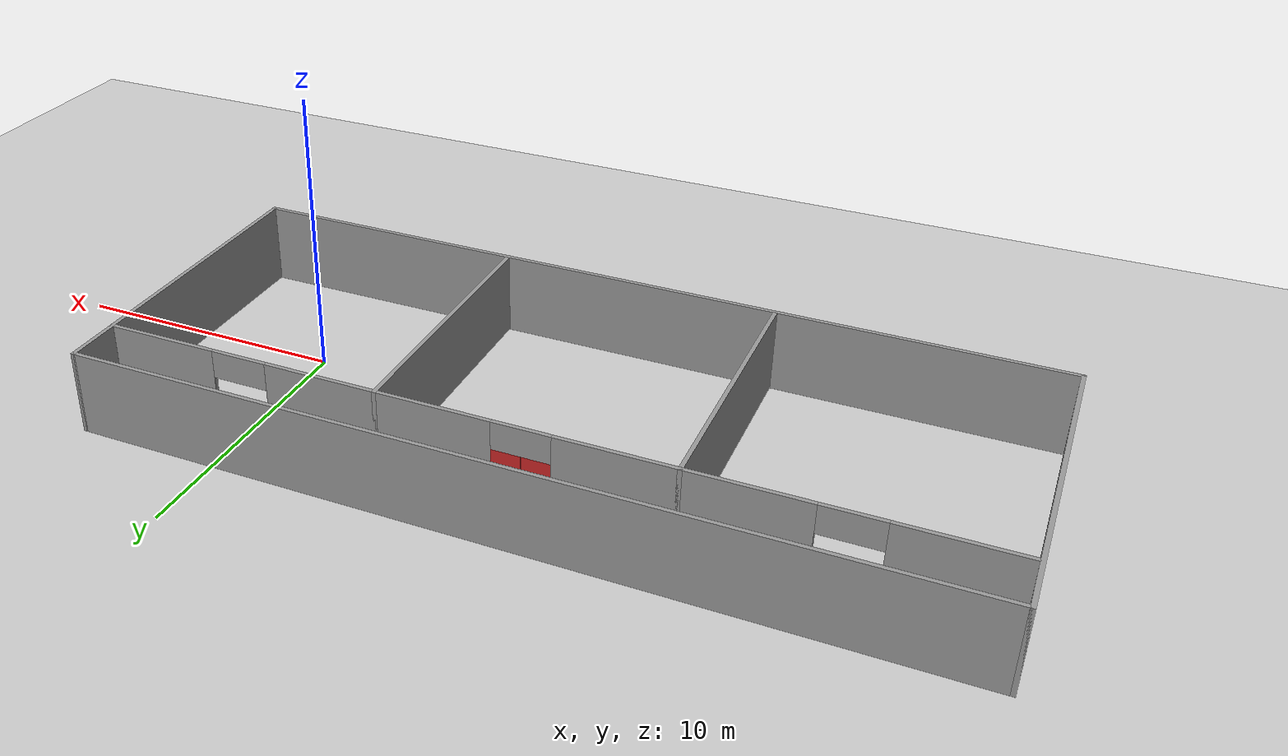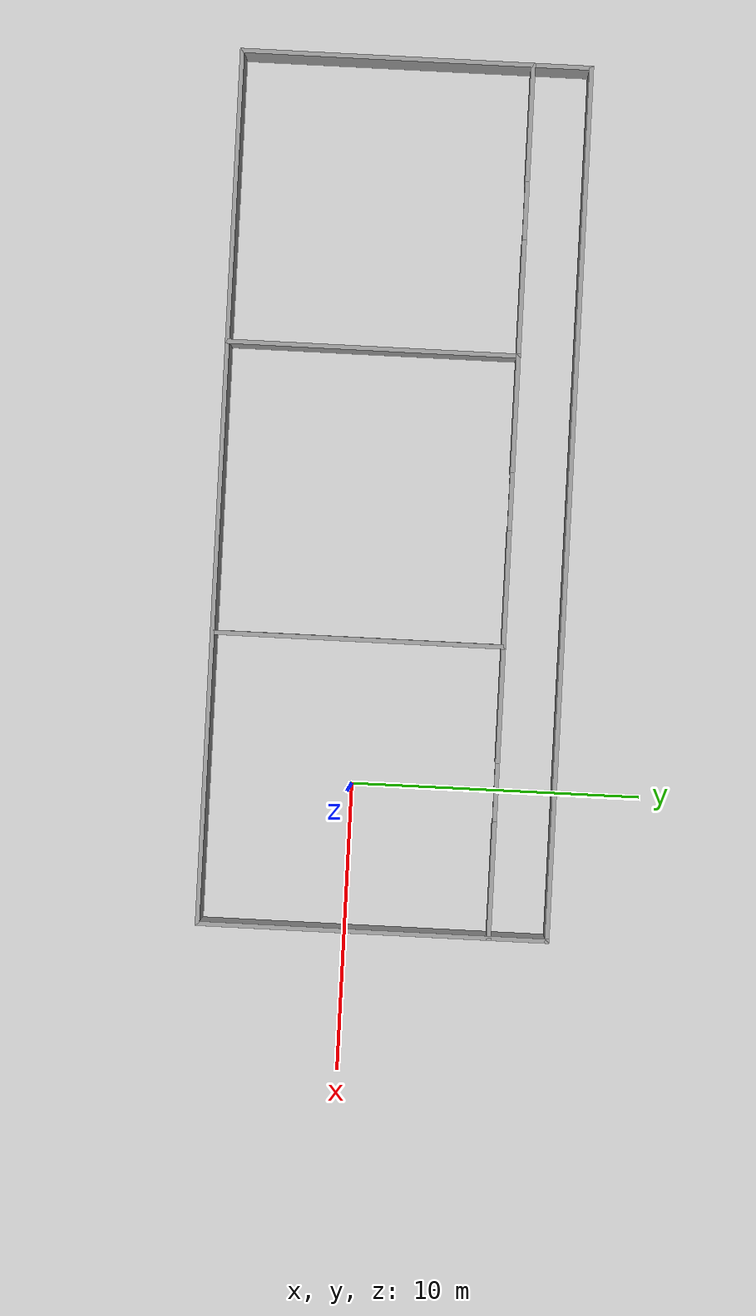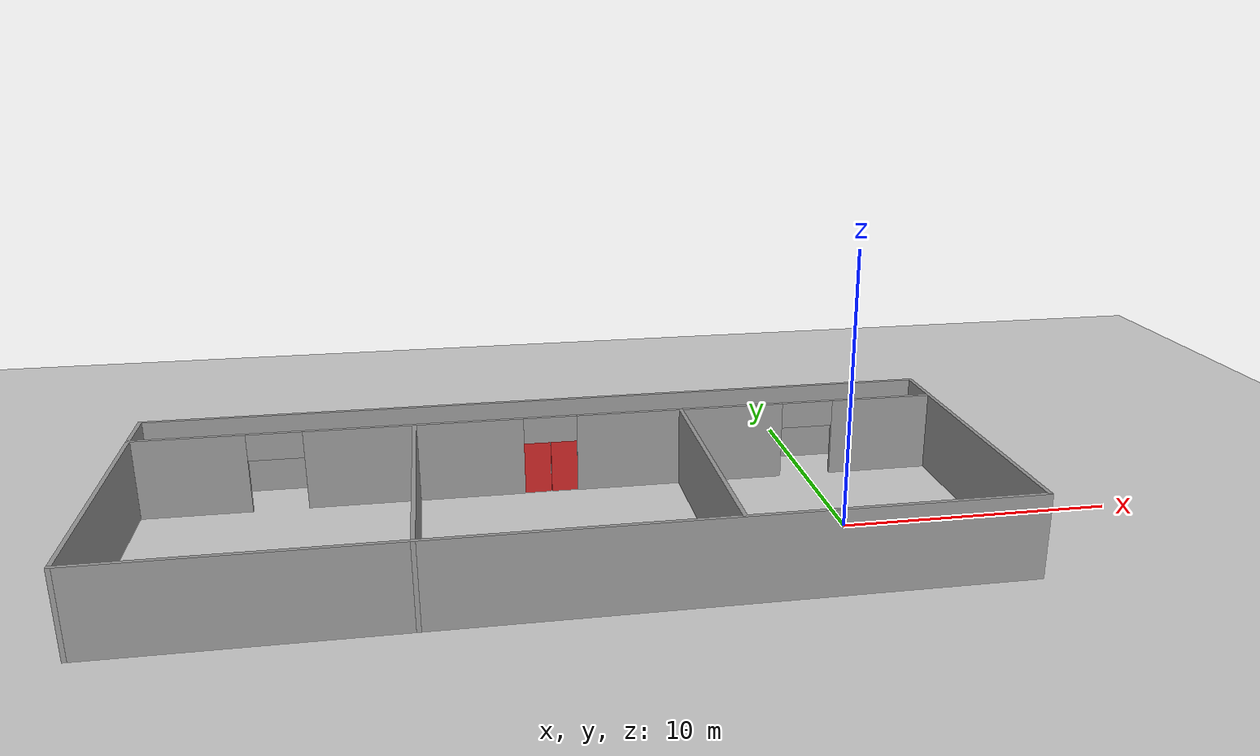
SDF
<sdf version="1.6">
 <world name="default">
  <light name="sun" type="directional">
   <pose>0 0 10 0 -0 0</pose>
   <diffuse>0.8 0.8 0.8 1</diffuse>
   <specular>0.2 0.2 0.2 1</specular>
   <attenuation>
    <range>1000</range>
    <constant>0.9</constant>
    <linear>0.01</linear>
    <quadratic>0.001</quadratic>
   </attenuation>
   <direction>-0.5 0.1 -0.9</direction>
  </light>
  <model name="ground_plane">
   <static>1</static>
   <link name="link">
    <collision name="collision">
     <geometry><plane><normal>0 0 1</normal><size>100 100</size></plane></geometry>
     <surface><friction><ode><mu>100</mu><mu2>50</mu2></ode></friction></surface>
    </collision>
    <visual name="visual">
     <cast_shadows>0</cast_shadows>
     <geometry><plane><normal>0 0 1</normal><size>100 100</size></plane></geometry>
     <material>
      <script><uri>file://media/materials/scripts/gazebo.material</uri><name>Gazebo/Grey</name></script>
     </material>
    </visual>
   </link>
  </model>
  <gravity>0 0 -9.8</gravity>
  <magnetic_field>6e-06 2.3e-05 -4.2e-05</magnetic_field>
  <atmosphere type="adiabatic"/>
  <physics name="default_physics" default="0" type="ode">
   <max_step_size>0.001</max_step_size>
   <real_time_factor>1</real_time_factor>
   <real_time_update_rate>1000</real_time_update_rate>
  </physics>
  <scene><ambient>0.4 0.4 0.4 1</ambient><background>0.7 0.7 0.7 1</background><shadows>1</shadows></scene>
  <spherical_coordinates>
   <surface_model>EARTH_WGS84</surface_model>
   <latitude_deg>0</latitude_deg>
   <longitude_deg>0</longitude_deg>
   <elevation>0</elevation>
   <heading_deg>0</heading_deg>
  </spherical_coordinates>
  <model name="SimilarRooms">
   <pose>-10 1 0 0 -0 0</pose>
   <link name="Wall_1">
    <collision name="Wall_1_Collision">
     <geometry><box><size>30.15 0.15 3</size></box></geometry>
     <pose>0 0 1.5 0 -0 0</pose>
    </collision>
    <visual name="Wall_1_Visual">
     <pose>0 0 1.5 0 -0 0</pose>
     <geometry><box><size>30.15 0.15 3</size></box></geometry>
     <material>
      <script><uri>file://media/materials/scripts/gazebo.material</uri><name>Gazebo/Grey</name></script>
      <ambient>1 1 1 1</ambient>
     </material>
     <meta><layer>0</layer></meta>
    </visual>
    <pose>0 -6 0 0 -0 3.14159</pose>
   </link>
   <link name="Wall_10">
    <collision name="Wall_10_Collision">
     <geometry><box><size>10.15 0.15 3</size></box></geometry>
     <pose>0 0 1.5 0 -0 0</pose>
    </collision>
    <visual name="Wall_10_Visual">
     <pose>0 0 1.5 0 -0 0</pose>
     <geometry><box><size>10.15 0.15 3</size></box></geometry>
     <material>
      <script><uri>file://media/materials/scripts/gazebo.material</uri><name>Gazebo/Grey</name></script>
      <ambient>1 1 1 1</ambient>
     </material>
     <meta><layer>0</layer></meta>
    </visual>
    <pose>5 -1 0 0 0 -1.5708</pose>
   </link>
   <link name="Wall_2">
    <collision name="Wall_2_Collision">
     <geometry><box><size>12.15 0.15 3</size></box></geometry>
     <pose>0 0 1.5 0 -0 0</pose>
    </collision>
    <visual name="Wall_2_Visual">
     <pose>0 0 1.5 0 -0 0</pose>
     <geometry><box><size>12.15 0.15 3</size></box></geometry>
     <material>
      <script><uri>file://media/materials/scripts/gazebo.material</uri><name>Gazebo/Grey</name></script>
      <ambient>1 1 1 1</ambient>
     </material>
     <meta><layer>0</layer></meta>
    </visual>
    <pose>-15 0 0 0 -0 1.5708</pose>
   </link>
   <link name="Wall_3">
    <collision name="Wall_3_Collision">
     <geometry><box><size>30.15 0.15 3</size></box></geometry>
     <pose>0 0 1.5 0 -0 0</pose>
    </collision>
    <visual name="Wall_3_Visual">
     <pose>0 0 1.5 0 -0 0</pose>
     <geometry><box><size>30.15 0.15 3</size></box></geometry>
     <material>
      <script><uri>file://media/materials/scripts/gazebo.material</uri><name>Gazebo/Grey</name></script>
      <ambient>1 1 1 1</ambient>
     </material>
     <meta><layer>0</layer></meta>
    </visual>
    <pose>0 6 0 0 -0 0</pose>
   </link>
   <link name="Wall_4">
    <collision name="Wall_4_Collision">
     <geometry><box><size>12.15 0.15 3</size></box></geometry>
     <pose>0 0 1.5 0 -0 0</pose>
    </collision>
    <visual name="Wall_4_Visual">
     <pose>0 0 1.5 0 -0 0</pose>
     <geometry><box><size>12.15 0.15 3</size></box></geometry>
     <material>
      <script><uri>file://media/materials/scripts/gazebo.material</uri><name>Gazebo/Grey</name></script>
      <ambient>1 1 1 1</ambient>
     </material>
     <meta><layer>0</layer></meta>
    </visual>
    <pose>15 0 0 0 0 -1.5708</pose>
   </link>
   <link name="Wall_6">
    <pose>0 4 0 0 -0 0</pose>
    <visual name="Wall_6_Visual_0">
     <pose>-13.0375 0 1.5 0 -0 0</pose>
     <geometry><box><size>4.075 0.15 3</size></box></geometry>
     <material>
      <script><uri>file://media/materials/scripts/gazebo.material</uri><name>Gazebo/Grey</name></script>
      <ambient>1 1 1 1</ambient>
     </material>
     <meta><layer>0</layer></meta>
    </visual>
    <collision name="Wall_6_Collision_0">
     <geometry><box><size>4.075 0.15 3</size></box></geometry>
     <pose>-13.0375 0 1.5 0 -0 0</pose>
    </collision>
    <visual name="Wall_6_Visual_1">
     <pose>-5 0 1.5 0 -0 0</pose>
     <geometry><box><size>8 0.15 3</size></box></geometry>
     <material>
      <script><uri>file://media/materials/scripts/gazebo.material</uri><name>Gazebo/Grey</name></script>
      <ambient>1 1 1 1</ambient>
     </material>
     <meta><layer>0</layer></meta>
    </visual>
    <collision name="Wall_6_Collision_1">
     <geometry><box><size>8 0.15 3</size></box></geometry>
     <pose>-5 0 1.5 0 -0 0</pose>
    </collision>
    <visual name="Wall_6_Visual_2">
     <pose>5 0 1.5 0 -0 0</pose>
     <geometry><box><size>8 0.15 3</size></box></geometry>
     <material>
      <script><uri>file://media/materials/scripts/gazebo.material</uri><name>Gazebo/Grey</name></script>
      <ambient>1 1 1 1</ambient>
     </material>
     <meta><layer>0</layer></meta>
    </visual>
    <collision name="Wall_6_Collision_2">
     <geometry><box><size>8 0.15 3</size></box></geometry>
     <pose>5 0 1.5 0 -0 0</pose>
    </collision>
    <visual name="Wall_6_Visual_3">
     <pose>13.0375 0 1.5 0 -0 0</pose>
     <geometry><box><size>4.075 0.15 3</size></box></geometry>
     <material>
      <script><uri>file://media/materials/scripts/gazebo.material</uri><name>Gazebo/Grey</name></script>
      <ambient>1 1 1 1</ambient>
     </material>
     <meta><layer>0</layer></meta>
    </visual>
    <collision name="Wall_6_Collision_3">
     <geometry><box><size>4.075 0.15 3</size></box></geometry>
     <pose>13.0375 0 1.5 0 -0 0</pose>
    </collision>
    <visual name="Wall_6_Visual_4">
     <pose>-10 0 2.5 0 -0 0</pose>
     <geometry><box><size>2 0.15 1</size></box></geometry>
     <material>
      <script><uri>file://media/materials/scripts/gazebo.material</uri><name>Gazebo/Grey</name></script>
      <ambient>1 1 1 1</ambient>
     </material>
     <meta><layer>0</layer></meta>
    </visual>
    <collision name="Wall_6_Collision_4">
     <geometry><box><size>2 0.15 1</size></box></geometry>
     <pose>-10 0 2.5 0 -0 0</pose>
    </collision>
    <visual name="Wall_6_Visual_5">
     <pose>0 0 2.5 0 -0 0</pose>
     <geometry><box><size>2 0.15 1</size></box></geometry>
     <material>
      <script><uri>file://media/materials/scripts/gazebo.material</uri><name>Gazebo/Grey</name></script>
      <ambient>1 1 1 1</ambient>
     </material>
     <meta><layer>0</layer></meta>
    </visual>
    <collision name="Wall_6_Collision_5">
     <geometry><box><size>2 0.15 1</size></box></geometry>
     <pose>0 0 2.5 0 -0 0</pose>
    </collision>
    <visual name="Wall_6_Visual_6">
     <pose>10 0 2.5 0 -0 0</pose>
     <geometry><box><size>2 0.15 1</size></box></geometry>
     <material>
      <script><uri>file://media/materials/scripts/gazebo.material</uri><name>Gazebo/Grey</name></script>
      <ambient>1 1 1 1</ambient>
     </material>
     <meta><layer>0</layer></meta>
    </visual>
    <collision name="Wall_6_Collision_6">
     <geometry><box><size>2 0.15 1</size></box></geometry>
     <pose>10 0 2.5 0 -0 0</pose>
    </collision>
   </link>
   <link name="Wall_8">
    <collision name="Wall_8_Collision">
     <geometry><box><size>10.15 0.15 3</size></box></geometry>
     <pose>0 0 1.5 0 -0 0</pose>
    </collision>
    <visual name="Wall_8_Visual">
     <pose>0 0 1.5 0 -0 0</pose>
     <geometry><box><size>10.15 0.15 3</size></box></geometry>
     <material>
      <script><uri>file://media/materials/scripts/gazebo.material</uri><name>Gazebo/Grey</name></script>
      <ambient>1 1 1 1</ambient>
     </material>
     <meta><layer>0</layer></meta>
    </visual>
    <pose>-5 -1 0 0 0 -1.5708</pose>
   </link>
   <static>1</static>
  </model>
  <model name="unit_box_new_red">
   <link name="link">
    <inertial>
     <mass>3.93982e+06</mass>
     <inertia>
      <ixx>5.42451e+06</ixx>
      <ixy>0</ixy>
      <ixz>0</ixz>
      <iyy>5.42451e+06</iyy>
      <iyz>0</iyz>
      <izz>656636</izz>
     </inertia>
    </inertial>
    <visual name="visual">
     <geometry><box><size>1 0.1 2</size></box></geometry>
     <material>
      <script><name>Gazebo/Red</name><uri>file://media/materials/scripts/gazebo.material</uri></script>
      <shader type="pixel"><normal_map>__default__</normal_map></shader>
      <ambient>0.5 0.3 0.3 1</ambient>
      <diffuse>0.9 0.7 0.7 1</diffuse>
      <specular>0.03 0.01 0.01 1</specular>
      <emissive>0 0 0 1</emissive>
     </material>
     <pose>0 0 1 0 -0 0</pose>
    </visual>
    <collision name="collision">
     <pose>0 0 1 0 -0 0</pose>
     <geometry><box><size>1 0.1 2</size></box></geometry>
     <surface>
      <friction>
       <ode><mu>1</mu><mu2>1</mu2><fdir1>0 0 0</fdir1><slip1>0</slip1><slip2>0</slip2></ode>
       <torsional>
        <coefficient>1</coefficient>
        <patch_radius>0</patch_radius>
        <surface_radius>0</surface_radius>
        <use_patch_radius>1</use_patch_radius>
        <ode><slip>0</slip></ode>
       </torsional>
      </friction>
      <bounce><restitution_coefficient>0</restitution_coefficient><threshold>1e+06</threshold></bounce>
      <contact>
       <collide_without_contact>0</collide_without_contact>
       <collide_without_contact_bitmask>1</collide_without_contact_bitmask>
       <collide_bitmask>1</collide_bitmask>
       <ode>
        <soft_cfm>0</soft_cfm>
        <soft_erp>0.2</soft_erp>
        <kp>1e+13</kp>
        <kd>1</kd>
        <max_vel>0.01</max_vel>
        <min_depth>0</min_depth>
       </ode>
       <bullet>
        <split_impulse>1</split_impulse>
        <split_impulse_penetration_threshold>-0.01</split_impulse_penetration_threshold>
        <soft_cfm>0</soft_cfm>
        <soft_erp>0.2</soft_erp>
        <kp>1e+13</kp>
        <kd>1</kd>
       </bullet>
      </contact>
     </surface>
    </collision>
   </link>
   <static>1</static>
   <pose>-10.51 5 0 0 -0 0</pose>
  </model>
  <model name="unit_box_new_red_clone">
   <link name="link">
    <inertial>
     <mass>3.93982e+06</mass>
     <inertia>
      <ixx>5.42451e+06</ixx>
      <ixy>0</ixy>
      <ixz>0</ixz>
      <iyy>5.42451e+06</iyy>
      <iyz>0</iyz>
      <izz>656636</izz>
     </inertia>
    </inertial>
    <visual name="visual">
     <geometry><box><size>1 0.1 2</size></box></geometry>
     <material>
      <script><name>Gazebo/Red</name><uri>file://media/materials/scripts/gazebo.material</uri></script>
      <shader type="pixel"><normal_map>__default__</normal_map></shader>
      <ambient>0.5 0.3 0.3 1</ambient>
      <diffuse>0.9 0.7 0.7 1</diffuse>
      <specular>0.03 0.01 0.01 1</specular>
      <emissive>0 0 0 1</emissive>
     </material>
     <pose>0 0 1 0 -0 0</pose>
    </visual>
    <collision name="collision">
     <pose>0 0 1 0 -0 0</pose>
     <geometry><box><size>1 0.1 2</size></box></geometry>
     <surface>
      <friction>
       <ode><mu>1</mu><mu2>1</mu2><fdir1>0 0 0</fdir1><slip1>0</slip1><slip2>0</slip2></ode>
       <torsional>
        <coefficient>1</coefficient>
        <patch_radius>0</patch_radius>
        <surface_radius>0</surface_radius>
        <use_patch_radius>1</use_patch_radius>
        <ode><slip>0</slip></ode>
       </torsional>
      </friction>
      <bounce><restitution_coefficient>0</restitution_coefficient><threshold>1e+06</threshold></bounce>
      <contact>
       <collide_without_contact>0</collide_without_contact>
       <collide_without_contact_bitmask>1</collide_without_contact_bitmask>
       <collide_bitmask>1</collide_bitmask>
       <ode>
        <soft_cfm>0</soft_cfm>
        <soft_erp>0.2</soft_erp>
        <kp>1e+13</kp>
        <kd>1</kd>
        <max_vel>0.01</max_vel>
        <min_depth>0</min_depth>
       </ode>
       <bullet>
        <split_impulse>1</split_impulse>
        <split_impulse_penetration_threshold>-0.01</split_impulse_penetration_threshold>
        <soft_cfm>0</soft_cfm>
        <soft_erp>0.2</soft_erp>
        <kp>1e+13</kp>
        <kd>1</kd>
       </bullet>
      </contact>
     </surface>
    </collision>
   </link>
   <static>1</static>
   <pose>-9.49 5 0 0 -0 0</pose>
  </model>
 </world>
</sdf>
